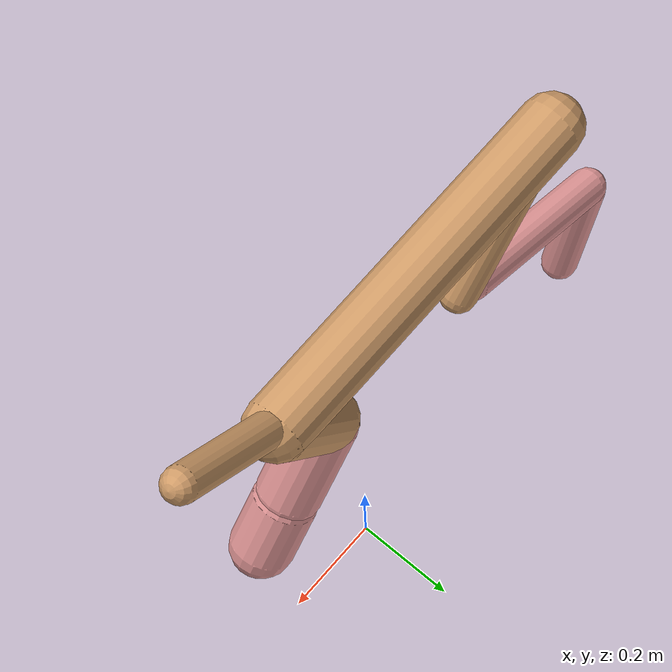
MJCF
<mujoco model="cheetah">
  <compiler angle="radian" coordinate="local" inertiafromgeom="true" settotalmass="14" />
  <default>
    <joint armature=".1" damping=".01" limited="true" solimplimit="0 .8 .03" solreflimit=".02 1" stiffness="8" />
    <geom conaffinity="0" condim="3" contype="1" friction="0.8 .1 .1" rgba="0.8 0.6 .4 1" solimp="0.0 0.8 0.01" solref="0.02 1" />
    <motor ctrllimited="true" ctrlrange="-1 1" />
  </default>
  <size nstack="300000" nuser_geom="1" />
  <option gravity="0 0 -9.81" timestep="0.01" />
  <worldbody>
    <body name="torso" pos="0.0 0.0 1.0221644752343728">
      <joint armature="0" axis="1 0 0" damping="0" limited="false" name="ignorex" pos="0 0 0" stiffness="0" type="slide" />
      <joint armature="0" axis="0 0 1" damping="0" limited="false" name="ignorez" pos="0 0 0" stiffness="0" type="slide" />
      <joint armature="0" axis="0 1 0" damping="0" limited="false" name="ignorey" pos="0 0 0" stiffness="0" type="hinge" />
      <geom fromto="-0.5 0.0 0.0 0.20853574166241856 0.0 0.0" name="torso" size="0.059392475317700366" type="capsule" />
      <geom axisangle="0 1 0 .87" name="head" pos="0.3085357416624185 0.0 0.1" size="0.03353090128408805 0.15" type="capsule" />

      <body name="bthigh" pos="-.5 0 0">
        <joint axis="0 1 0" damping="6" name="bthigh" pos="0 0 0" range="-.52 1.05" stiffness="240" type="hinge" />
        <geom axisangle="0 1 0 -3.8" name="bthigh" pos="0.12413723420382564 0.0 -0.1613784044649733" size="0.035237488826536434 0.1845880075499865" type="capsule" />
        <body name="bshin" pos="0.20827446840765126 0.0 -0.3127568089299466">
          <joint axis="0 1 0" damping="4.5" name="bshin" pos="0 0 0" range="-.785 .785" stiffness="180" type="hinge" />
          <geom axisangle="0 1 0 -2.03" name="bshin" pos="-0.17662957626574266 0.0 -0.08831478813287133" rgba="0.9 0.6 0.6 1" size="0.035237488826536434 0.19095311125860673" type="capsule" />
          <body name="bfoot" pos="-0.3532591525314853 0.0 -0.17662957626574266">
            <joint axis="0 1 0" damping="3" name="bfoot" pos="0 0 0" range="-.4 .785" stiffness="120" type="hinge" />
            <geom axisangle="0 1 0 -.27" name="bfoot" pos="0.03758292011346301 0.0 -0.12151810836686372" rgba="0.9 0.6 0.6 1" size="0.035237488826536434 0.11966394972206022" type="capsule" />
            <inertial mass="10" />
          </body>
        </body>
      </body>
      <body name="fthigh" pos="0.2085357416624185 0.0 0.0">
        <joint axis="0 1 0" damping="4.5" name="fthigh" pos="0 0 0" range="-1.5 0.8" stiffness="180" type="hinge" />
        <geom axisangle="0 1 0 .52" name="fthigh" pos="-0.06044241150633218 0.0 -0.10361556258228372" size="0.05968254311605721 0.11403167673964426" type="capsule" />
        <body name="fshin" pos="-0.12088482301266436 0.0 -0.20723112516456743">
          <joint axis="0 1 0" damping="3" name="fshin" pos="0 0 0" range="-1.2 1.1" stiffness="120" type="hinge" />
          <geom axisangle="0 1 0 -.6" name="fshin" pos="0.05614878155137085 0.0 -0.07774446676343655" rgba="0.9 0.6 0.6 1" size="0.05968254311605721 0.09088238898046835" type="capsule" />
          <body name="ffoot" pos="0.1122975631027417 0.0 -0.1554889335268731">
            <joint axis="0 1 0" damping="1.5" name="ffoot" pos="0 0 0" range="-3.1 -0.3" stiffness="60" type="hinge" />
            <geom axisangle="0 1 0 -.6" name="ffoot" pos="0.03960143958024959 0.0 -0.061602239347054916" rgba="0.9 0.6 0.6 1" size="0.05968254311605721 0.06001667196823382" type="capsule" />
            <inertial mass="10" />
          </body>
        </body>
      </body>
    </body>
  </worldbody>
  <actuator>
    <motor gear="120" joint="bthigh" name="bthigh" />
    <motor gear="90" joint="bshin" name="bshin" />
    <motor gear="60" joint="bfoot" name="bfoot" />
    <motor gear="120" joint="fthigh" name="fthigh" />
    <motor gear="60" joint="fshin" name="fshin" />
    <motor gear="30" joint="ffoot" name="ffoot" />
  </actuator>
</mujoco>
